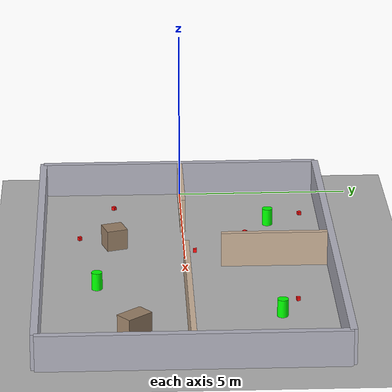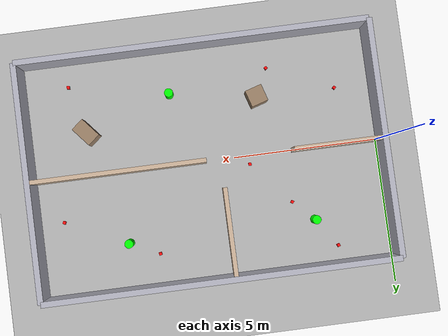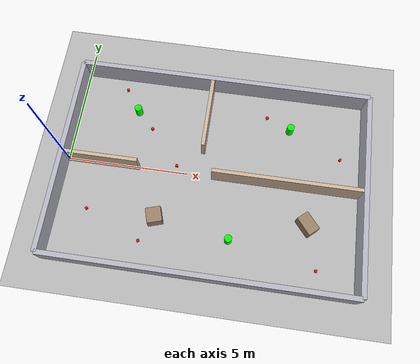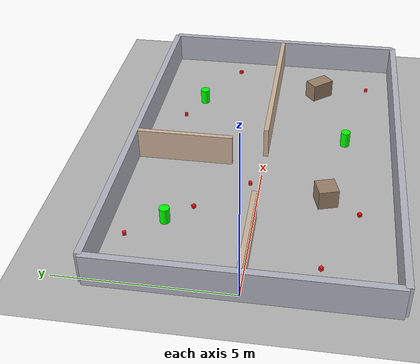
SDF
<?xml version="1.0" ?>
<sdf version="1.6">
  <world name="vlm_exploration">
    <!-- Physics tuned for legged robot stability -->
    <physics type="ode">
      <max_step_size>0.002</max_step_size>
      <real_time_factor>1</real_time_factor>
      <real_time_update_rate>500</real_time_update_rate>
      <ode>
        <solver>
          <type>quick</type>
          <iters>25</iters>
          <sor>1.3</sor>
          <use_dynamic_moi_rescaling>0</use_dynamic_moi_rescaling>
        </solver>
        <constraints>
          <cfm>1e-5</cfm>
          <erp>0.2</erp>
          <contact_max_correcting_vel>100</contact_max_correcting_vel>
          <contact_surface_layer>0.001</contact_surface_layer>
        </constraints>
      </ode>
    </physics>

    <light name="sun" type="directional">
      <cast_shadows>true</cast_shadows>
      <pose>0 0 10 0 0 0</pose>
      <diffuse>0.8 0.8 0.8 1</diffuse>
      <specular>0.2 0.2 0.2 1</specular>
      <direction>-0.5 0.1 -0.9</direction>
    </light>

    <!-- Ground plane -->
    <model name="ground_plane">
      <static>true</static>
      <link name="link">
        <collision name="collision">
          <geometry>
            <plane><normal>0 0 1</normal><size>100 100</size></plane>
          </geometry>
          <surface>
            <friction>
              <ode><mu>1</mu><mu2>1</mu2></ode>
              <torsional><ode /></torsional>
            </friction>
            <contact><ode /></contact>
            <bounce />
          </surface>
          <max_contacts>10</max_contacts>
        </collision>
        <visual name="visual">
          <cast_shadows>false</cast_shadows>
          <geometry>
            <plane><normal>0 0 1</normal><size>100 100</size></plane>
          </geometry>
          <material>
            <ambient>0.3 0.3 0.3 1</ambient>
            <diffuse>0.7 0.7 0.7 1</diffuse>
          </material>
        </visual>
      </link>
    </model>

    <!-- === Outer walls === -->
    <!-- North wall -->
    <model name="wall_north">
      <static>true</static>
      <pose>6 4.1 0.5 0 0 0</pose>
      <link name="link">
        <collision name="c"><geometry><box><size>12.2 0.2 1.0</size></box></geometry></collision>
        <visual name="v"><geometry><box><size>12.2 0.2 1.0</size></box></geometry>
          <material><ambient>0.5 0.5 0.55 1</ambient><diffuse>0.7 0.7 0.75 1</diffuse></material>
        </visual>
      </link>
    </model>
    <!-- South wall -->
    <model name="wall_south">
      <static>true</static>
      <pose>6 -4.1 0.5 0 0 0</pose>
      <link name="link">
        <collision name="c"><geometry><box><size>12.2 0.2 1.0</size></box></geometry></collision>
        <visual name="v"><geometry><box><size>12.2 0.2 1.0</size></box></geometry>
          <material><ambient>0.5 0.5 0.55 1</ambient><diffuse>0.7 0.7 0.75 1</diffuse></material>
        </visual>
      </link>
    </model>
    <!-- West wall -->
    <model name="wall_west">
      <static>true</static>
      <pose>-0.1 0 0.5 0 0 0</pose>
      <link name="link">
        <collision name="c"><geometry><box><size>0.2 8.2 1.0</size></box></geometry></collision>
        <visual name="v"><geometry><box><size>0.2 8.2 1.0</size></box></geometry>
          <material><ambient>0.5 0.5 0.55 1</ambient><diffuse>0.7 0.7 0.75 1</diffuse></material>
        </visual>
      </link>
    </model>
    <!-- East wall -->
    <model name="wall_east">
      <static>true</static>
      <pose>12.1 0 0.5 0 0 0</pose>
      <link name="link">
        <collision name="c"><geometry><box><size>0.2 8.2 1.0</size></box></geometry></collision>
        <visual name="v"><geometry><box><size>0.2 8.2 1.0</size></box></geometry>
          <material><ambient>0.5 0.5 0.55 1</ambient><diffuse>0.7 0.7 0.75 1</diffuse></material>
        </visual>
      </link>
    </model>

    <!-- === Central corridor dividers === -->
    <!-- Horizontal divider (separates north rooms from south rooms) -->
    <!-- West segment: leaves gap for corridor -->
    <model name="divider_h_west">
      <static>true</static>
      <pose>1.5 0 0.5 0 0 0</pose>
      <link name="link">
        <collision name="c"><geometry><box><size>3.0 0.15 1.0</size></box></geometry></collision>
        <visual name="v"><geometry><box><size>3.0 0.15 1.0</size></box></geometry>
          <material><ambient>0.6 0.55 0.5 1</ambient><diffuse>0.8 0.7 0.6 1</diffuse></material>
        </visual>
      </link>
    </model>
    <!-- East segment -->
    <model name="divider_h_east">
      <static>true</static>
      <pose>9.0 0 0.5 0 0 0</pose>
      <link name="link">
        <collision name="c"><geometry><box><size>6.0 0.15 1.0</size></box></geometry></collision>
        <visual name="v"><geometry><box><size>6.0 0.15 1.0</size></box></geometry>
          <material><ambient>0.6 0.55 0.5 1</ambient><diffuse>0.8 0.7 0.6 1</diffuse></material>
        </visual>
      </link>
    </model>

    <!-- Vertical divider between Room A and Room B (north side) -->
    <model name="divider_v_north">
      <static>true</static>
      <pose>5.5 2.5 0.5 0 0 0</pose>
      <link name="link">
        <collision name="c"><geometry><box><size>0.15 3.0 1.0</size></box></geometry></collision>
        <visual name="v"><geometry><box><size>0.15 3.0 1.0</size></box></geometry>
          <material><ambient>0.6 0.55 0.5 1</ambient><diffuse>0.8 0.7 0.6 1</diffuse></material>
        </visual>
      </link>
    </model>

    <!-- Door openings created by leaving gaps in dividers -->

    <!-- === GREEN MARKER OBJECTS (VLM targets) === -->
    <!-- Green Marker 1: Room A (north-west) -->
    <model name="green_marker_1">
      <static>true</static>
      <pose>2.5 2.5 0.25 0 0 0</pose>
      <link name="link">
        <collision name="c"><geometry><cylinder><radius>0.15</radius><length>0.5</length></cylinder></geometry></collision>
        <visual name="v">
          <geometry><cylinder><radius>0.15</radius><length>0.5</length></cylinder></geometry>
          <material>
            <ambient>0.0 0.8 0.0 1</ambient>
            <diffuse>0.0 1.0 0.0 1</diffuse>
            <specular>0.1 0.3 0.1 1</specular>
          </material>
        </visual>
      </link>
    </model>

    <!-- Green Marker 2: Room B (north-east) -->
    <model name="green_marker_2">
      <static>true</static>
      <pose>9.0 2.5 0.25 0 0 0</pose>
      <link name="link">
        <collision name="c"><geometry><cylinder><radius>0.15</radius><length>0.5</length></cylinder></geometry></collision>
        <visual name="v">
          <geometry><cylinder><radius>0.15</radius><length>0.5</length></cylinder></geometry>
          <material>
            <ambient>0.0 0.8 0.0 1</ambient>
            <diffuse>0.0 1.0 0.0 1</diffuse>
            <specular>0.1 0.3 0.1 1</specular>
          </material>
        </visual>
      </link>
    </model>

    <!-- Green Marker 3: Room C/D (south) -->
    <model name="green_marker_3">
      <static>true</static>
      <pose>7.0 -2.5 0.25 0 0 0</pose>
      <link name="link">
        <collision name="c"><geometry><cylinder><radius>0.15</radius><length>0.5</length></cylinder></geometry></collision>
        <visual name="v">
          <geometry><cylinder><radius>0.15</radius><length>0.5</length></cylinder></geometry>
          <material>
            <ambient>0.0 0.8 0.0 1</ambient>
            <diffuse>0.0 1.0 0.0 1</diffuse>
            <specular>0.1 0.3 0.1 1</specular>
          </material>
        </visual>
      </link>
    </model>

    <!-- Small obstacle boxes for spatial complexity -->
    <model name="box_obstacle_1">
      <static>true</static>
      <pose>4.0 -2.0 0.3 0 0 0.3</pose>
      <link name="link">
        <collision name="c"><geometry><box><size>0.6 0.6 0.6</size></box></geometry></collision>
        <visual name="v"><geometry><box><size>0.6 0.6 0.6</size></box></geometry>
          <material><ambient>0.4 0.3 0.25 1</ambient><diffuse>0.6 0.5 0.4 1</diffuse></material>
        </visual>
      </link>
    </model>
    <model name="box_obstacle_2">
      <static>true</static>
      <pose>10.0 -1.5 0.3 0 0 0.7</pose>
      <link name="link">
        <collision name="c"><geometry><box><size>0.5 0.8 0.6</size></box></geometry></collision>
        <visual name="v"><geometry><box><size>0.5 0.8 0.6</size></box></geometry>
          <material><ambient>0.4 0.3 0.25 1</ambient><diffuse>0.6 0.5 0.4 1</diffuse></material>
        </visual>
      </link>
    </model>

    <!-- === RED BLOCKS (10cm cubes) — scattered artifact targets === -->
    <!-- Room A: tucked against north wall -->
    <model name="red_block_1">
      <static>true</static>
      <pose>1.8 3.5 0.05 0 0 0.4</pose>
      <link name="link">
        <collision name="c"><geometry><box><size>0.1 0.1 0.1</size></box></geometry></collision>
        <visual name="v"><geometry><box><size>0.1 0.1 0.1</size></box></geometry>
          <material><ambient>0.8 0.0 0.0 1</ambient><diffuse>1.0 0.05 0.05 1</diffuse><specular>0.3 0.1 0.1 1</specular></material>
        </visual>
      </link>
    </model>
    <!-- Room A: floor center -->
    <model name="red_block_2">
      <static>true</static>
      <pose>3.2 1.8 0.05 0 0 0.9</pose>
      <link name="link">
        <collision name="c"><geometry><box><size>0.1 0.1 0.1</size></box></geometry></collision>
        <visual name="v"><geometry><box><size>0.1 0.1 0.1</size></box></geometry>
          <material><ambient>0.8 0.0 0.0 1</ambient><diffuse>1.0 0.05 0.05 1</diffuse><specular>0.3 0.1 0.1 1</specular></material>
        </visual>
      </link>
    </model>
    <!-- Room B: near green marker 2 -->
    <model name="red_block_3">
      <static>true</static>
      <pose>8.0 3.0 0.05 0 0 0.2</pose>
      <link name="link">
        <collision name="c"><geometry><box><size>0.1 0.1 0.1</size></box></geometry></collision>
        <visual name="v"><geometry><box><size>0.1 0.1 0.1</size></box></geometry>
          <material><ambient>0.8 0.0 0.0 1</ambient><diffuse>1.0 0.05 0.05 1</diffuse><specular>0.3 0.1 0.1 1</specular></material>
        </visual>
      </link>
    </model>
    <!-- Room B: east corner -->
    <model name="red_block_4">
      <static>true</static>
      <pose>11.2 1.5 0.05 0 0 1.1</pose>
      <link name="link">
        <collision name="c"><geometry><box><size>0.1 0.1 0.1</size></box></geometry></collision>
        <visual name="v"><geometry><box><size>0.1 0.1 0.1</size></box></geometry>
          <material><ambient>0.8 0.0 0.0 1</ambient><diffuse>1.0 0.05 0.05 1</diffuse><specular>0.3 0.1 0.1 1</specular></material>
        </visual>
      </link>
    </model>
    <!-- Corridor: on the floor mid-passage -->
    <model name="red_block_5">
      <static>true</static>
      <pose>4.5 0.3 0.05 0 0 0.0</pose>
      <link name="link">
        <collision name="c"><geometry><box><size>0.1 0.1 0.1</size></box></geometry></collision>
        <visual name="v"><geometry><box><size>0.1 0.1 0.1</size></box></geometry>
          <material><ambient>0.8 0.0 0.0 1</ambient><diffuse>1.0 0.05 0.05 1</diffuse><specular>0.3 0.1 0.1 1</specular></material>
        </visual>
      </link>
    </model>
    <!-- Room C/D south: near box_obstacle_1 -->
    <model name="red_block_6">
      <static>true</static>
      <pose>3.5 -3.0 0.05 0 0 0.6</pose>
      <link name="link">
        <collision name="c"><geometry><box><size>0.1 0.1 0.1</size></box></geometry></collision>
        <visual name="v"><geometry><box><size>0.1 0.1 0.1</size></box></geometry>
          <material><ambient>0.8 0.0 0.0 1</ambient><diffuse>1.0 0.05 0.05 1</diffuse><specular>0.3 0.1 0.1 1</specular></material>
        </visual>
      </link>
    </model>
    <!-- Room D: far east -->
    <model name="red_block_7">
      <static>true</static>
      <pose>10.5 -3.2 0.05 0 0 1.5</pose>
      <link name="link">
        <collision name="c"><geometry><box><size>0.1 0.1 0.1</size></box></geometry></collision>
        <visual name="v"><geometry><box><size>0.1 0.1 0.1</size></box></geometry>
          <material><ambient>0.8 0.0 0.0 1</ambient><diffuse>1.0 0.05 0.05 1</diffuse><specular>0.3 0.1 0.1 1</specular></material>
        </visual>
      </link>
    </model>
    <!-- Room C: west side -->
    <model name="red_block_8">
      <static>true</static>
      <pose>1.2 -2.0 0.05 0 0 0.8</pose>
      <link name="link">
        <collision name="c"><geometry><box><size>0.1 0.1 0.1</size></box></geometry></collision>
        <visual name="v"><geometry><box><size>0.1 0.1 0.1</size></box></geometry>
          <material><ambient>0.8 0.0 0.0 1</ambient><diffuse>1.0 0.05 0.05 1</diffuse><specular>0.3 0.1 0.1 1</specular></material>
        </visual>
      </link>
    </model>

    <gravity>0 0 -9.8</gravity>
    <magnetic_field>6e-06 2.3e-05 -4.2e-05</magnetic_field>
    <atmosphere type="adiabatic" />
    <scene>
      <ambient>0.4 0.4 0.4 1</ambient>
      <background>0.7 0.7 0.7 1</background>
      <shadows>1</shadows>
    </scene>

    <!-- Required for initial_pose_guard (set_entity_state service) -->
    <plugin name="gazebo_ros_state" filename="libgazebo_ros_state.so">
      <ros>
        <namespace>/gazebo</namespace>
      </ros>
      <update_rate>100.0</update_rate>
    </plugin>

  </world>
</sdf>
